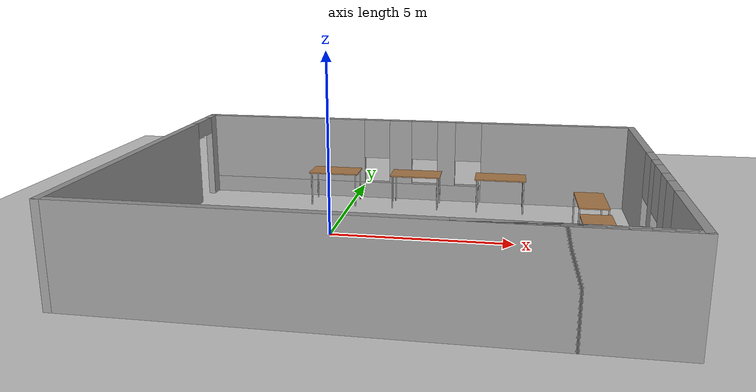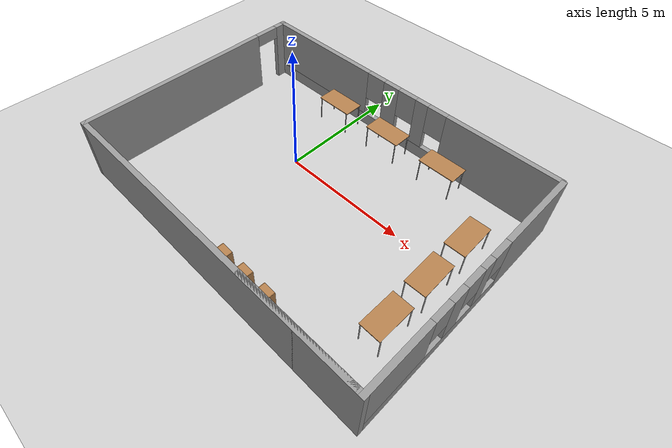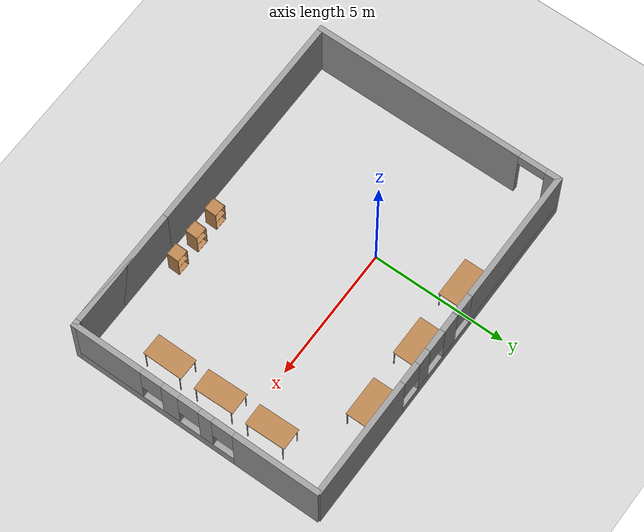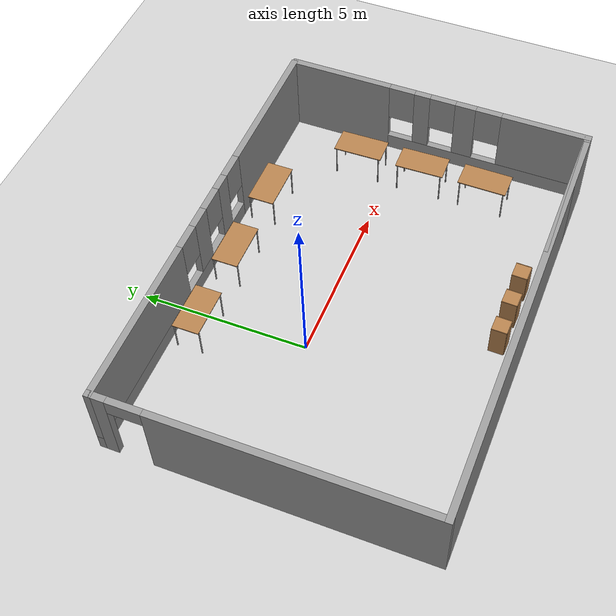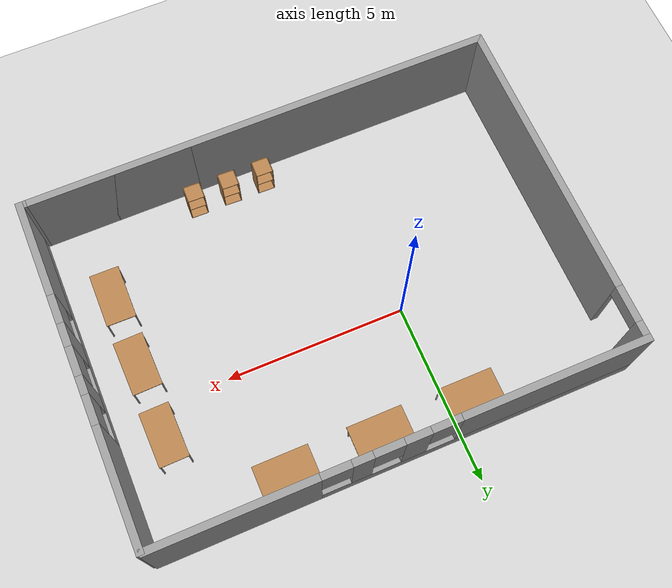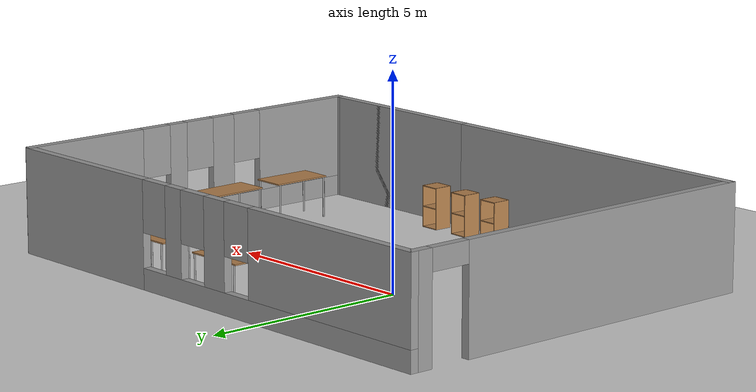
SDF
<sdf version="1.4">
 <world name="default">
  <light name="sun" type="directional">
   <pose>0 0 10 0 -0 0</pose>
   <diffuse>0.8 0.8 0.8 1</diffuse>
   <specular>0.2 0.2 0.2 1</specular>
   <attenuation>
    <range>1000</range>
    <constant>0.9</constant>
    <linear>0.01</linear>
    <quadratic>0.001</quadratic>
   </attenuation>
   <direction>-0.5 0.1 -0.9</direction>
  </light>
  <model name="ground_plane">
   <static>1</static>
   <link name="link">
    <collision name="collision">
     <geometry><plane><normal>0 0 1</normal><size>100 100</size></plane></geometry>
     <surface><friction><ode><mu>100</mu><mu2>50</mu2></ode></friction></surface>
    </collision>
    <visual name="visual">
     <cast_shadows>0</cast_shadows>
     <geometry><plane><normal>0 0 1</normal><size>100 100</size></plane></geometry>
     <material>
      <script><uri>file://media/materials/scripts/gazebo.material</uri><name>Gazebo/Grey</name></script>
     </material>
    </visual>
    <velocity_decay><linear>0</linear><angular>0</angular></velocity_decay>
   </link>
  </model>
  <physics type="ode">
   <max_step_size>0.001</max_step_size>
   <real_time_factor>1</real_time_factor>
   <real_time_update_rate>1000</real_time_update_rate>
   <gravity>0 0 -9.8</gravity>
  </physics>
  <scene><ambient>0.4 0.4 0.4 1</ambient><background>0.7 0.7 0.7 1</background><shadows>1</shadows></scene>
  <spherical_coordinates>
   <surface_model>EARTH_WGS84</surface_model>
   <latitude_deg>0</latitude_deg>
   <longitude_deg>0</longitude_deg>
   <elevation>0</elevation>
   <heading_deg>0</heading_deg>
  </spherical_coordinates>
  <model name="lab3">
   <link name="Wall_10">
    <pose>7.31225 -0.95869 0 0 0 -1.5708</pose>
    <visual name="Wall_10_Visual_0">
     <pose>-3.13448 0 1.25 0 -0 0</pose>
     <geometry><box><size>3.23582 0.2 2.5</size></box></geometry>
     <material>
      <script><uri>file://media/materials/scripts/gazebo.material</uri><name>Gazebo/Grey</name></script>
     </material>
    </visual>
    <collision name="Wall_10_Collision_0">
     <geometry><box><size>3.23582 0.2 2.5</size></box></geometry>
     <pose>-3.13448 0 1.25 0 -0 0</pose>
    </collision>
    <visual name="Wall_10_Visual_1">
     <pose>1.61791 0 0.25 0 -0 0</pose>
     <geometry><box><size>6.26896 0.2 0.5</size></box></geometry>
     <material>
      <script><uri>file://media/materials/scripts/gazebo.material</uri><name>Gazebo/Grey</name></script>
     </material>
    </visual>
    <collision name="Wall_10_Collision_1">
     <geometry><box><size>6.26896 0.2 0.5</size></box></geometry>
     <pose>1.61791 0 0.25 0 -0 0</pose>
    </collision>
    <visual name="Wall_10_Visual_2">
     <pose>-0.465239 0 1.5 0 -0 0</pose>
     <geometry><box><size>0.50267 0.2 2</size></box></geometry>
     <material>
      <script><uri>file://media/materials/scripts/gazebo.material</uri><name>Gazebo/Grey</name></script>
     </material>
    </visual>
    <collision name="Wall_10_Collision_2">
     <geometry><box><size>0.50267 0.2 2</size></box></geometry>
     <pose>-0.465239 0 1.5 0 -0 0</pose>
    </collision>
    <visual name="Wall_10_Visual_3">
     <pose>0.907216 0 1.5 0 -0 0</pose>
     <geometry><box><size>0.642241 0.2 2</size></box></geometry>
     <material>
      <script><uri>file://media/materials/scripts/gazebo.material</uri><name>Gazebo/Grey</name></script>
     </material>
    </visual>
    <collision name="Wall_10_Collision_3">
     <geometry><box><size>0.642241 0.2 2</size></box></geometry>
     <pose>0.907216 0 1.5 0 -0 0</pose>
    </collision>
    <visual name="Wall_10_Visual_4">
     <pose>3.39036 0 1.5 0 -0 0</pose>
     <geometry><box><size>2.72405 0.2 2</size></box></geometry>
     <material>
      <script><uri>file://media/materials/scripts/gazebo.material</uri><name>Gazebo/Grey</name></script>
     </material>
    </visual>
    <collision name="Wall_10_Collision_4">
     <geometry><box><size>2.72405 0.2 2</size></box></geometry>
     <pose>3.39036 0 1.5 0 -0 0</pose>
    </collision>
    <visual name="Wall_10_Visual_5">
     <pose>-1.11657 0 1.9 0 -0 0</pose>
     <geometry><box><size>0.8 0.2 1.2</size></box></geometry>
     <material>
      <script><uri>file://media/materials/scripts/gazebo.material</uri><name>Gazebo/Grey</name></script>
     </material>
    </visual>
    <collision name="Wall_10_Collision_5">
     <geometry><box><size>0.8 0.2 1.2</size></box></geometry>
     <pose>-1.11657 0 1.9 0 -0 0</pose>
    </collision>
    <visual name="Wall_10_Visual_6">
     <pose>0.186096 0 1.9 0 -0 0</pose>
     <geometry><box><size>0.8 0.2 1.2</size></box></geometry>
     <material>
      <script><uri>file://media/materials/scripts/gazebo.material</uri><name>Gazebo/Grey</name></script>
     </material>
    </visual>
    <collision name="Wall_10_Collision_6">
     <geometry><box><size>0.8 0.2 1.2</size></box></geometry>
     <pose>0.186096 0 1.9 0 -0 0</pose>
    </collision>
    <visual name="Wall_10_Visual_7">
     <pose>1.62834 0 1.9 0 -0 0</pose>
     <geometry><box><size>0.8 0.2 1.2</size></box></geometry>
     <material>
      <script><uri>file://media/materials/scripts/gazebo.material</uri><name>Gazebo/Grey</name></script>
     </material>
    </visual>
    <collision name="Wall_10_Collision_7">
     <geometry><box><size>0.8 0.2 1.2</size></box></geometry>
     <pose>1.62834 0 1.9 0 -0 0</pose>
    </collision>
    <velocity_decay><linear>0</linear><angular>0</angular></velocity_decay>
   </link>
   <link name="Wall_11">
    <collision name="Wall_11_Collision">
     <geometry><box><size>4.71282 0.2 2.5</size></box></geometry>
     <pose>0 0 1.25 0 -0 0</pose>
    </collision>
    <visual name="Wall_11_Visual">
     <pose>0 0 1.25 0 -0 0</pose>
     <geometry><box><size>4.71282 0.2 2.5</size></box></geometry>
     <material>
      <script><uri>file://media/materials/scripts/gazebo.material</uri><name>Gazebo/Grey</name></script>
     </material>
    </visual>
    <velocity_decay><linear>0</linear><angular>0</angular></velocity_decay>
    <pose>5.05584 -5.61108 0 0 -0 3.14159</pose>
   </link>
   <link name="Wall_6">
    <pose>0.769252 3.73757 0 0 -0 3.14159</pose>
    <visual name="Wall_6_Visual_0">
     <pose>-4.3638 0 1.25 0 -0 0</pose>
     <geometry><box><size>4.42554 0.2 2.5</size></box></geometry>
     <material>
      <script><uri>file://media/materials/scripts/gazebo.material</uri><name>Gazebo/Grey</name></script>
     </material>
    </visual>
    <collision name="Wall_6_Collision_0">
     <geometry><box><size>4.42554 0.2 2.5</size></box></geometry>
     <pose>-4.3638 0 1.25 0 -0 0</pose>
    </collision>
    <visual name="Wall_6_Visual_1">
     <pose>2.21277 0 0.25 0 -0 0</pose>
     <geometry><box><size>8.7276 0.2 0.5</size></box></geometry>
     <material>
      <script><uri>file://media/materials/scripts/gazebo.material</uri><name>Gazebo/Grey</name></script>
     </material>
    </visual>
    <collision name="Wall_6_Collision_1">
     <geometry><box><size>8.7276 0.2 0.5</size></box></geometry>
     <pose>2.21277 0 0.25 0 -0 0</pose>
    </collision>
    <visual name="Wall_6_Visual_2">
     <pose>-1.07643 0 1.5 0 -0 0</pose>
     <geometry><box><size>0.549193 0.2 2</size></box></geometry>
     <material>
      <script><uri>file://media/materials/scripts/gazebo.material</uri><name>Gazebo/Grey</name></script>
     </material>
    </visual>
    <collision name="Wall_6_Collision_2">
     <geometry><box><size>0.549193 0.2 2</size></box></geometry>
     <pose>-1.07643 0 1.5 0 -0 0</pose>
    </collision>
    <visual name="Wall_6_Visual_3">
     <pose>0.342546 0 1.5 0 -0 0</pose>
     <geometry><box><size>0.688765 0.2 2</size></box></geometry>
     <material>
      <script><uri>file://media/materials/scripts/gazebo.material</uri><name>Gazebo/Grey</name></script>
     </material>
    </visual>
    <collision name="Wall_6_Collision_3">
     <geometry><box><size>0.688765 0.2 2</size></box></geometry>
     <pose>0.342546 0 1.5 0 -0 0</pose>
    </collision>
    <visual name="Wall_6_Visual_4">
     <pose>4.03175 0 1.5 0 -0 0</pose>
     <geometry><box><size>5.08964 0.2 2</size></box></geometry>
     <material>
      <script><uri>file://media/materials/scripts/gazebo.material</uri><name>Gazebo/Grey</name></script>
     </material>
    </visual>
    <collision name="Wall_6_Collision_4">
     <geometry><box><size>5.08964 0.2 2</size></box></geometry>
     <pose>4.03175 0 1.5 0 -0 0</pose>
    </collision>
    <visual name="Wall_6_Visual_5">
     <pose>-1.75103 0 1.9 0 -0 0</pose>
     <geometry><box><size>0.8 0.2 1.2</size></box></geometry>
     <material>
      <script><uri>file://media/materials/scripts/gazebo.material</uri><name>Gazebo/Grey</name></script>
     </material>
    </visual>
    <collision name="Wall_6_Collision_5">
     <geometry><box><size>0.8 0.2 1.2</size></box></geometry>
     <pose>-1.75103 0 1.9 0 -0 0</pose>
    </collision>
    <visual name="Wall_6_Visual_6">
     <pose>-0.401837 0 1.9 0 -0 0</pose>
     <geometry><box><size>0.8 0.2 1.2</size></box></geometry>
     <material>
      <script><uri>file://media/materials/scripts/gazebo.material</uri><name>Gazebo/Grey</name></script>
     </material>
    </visual>
    <collision name="Wall_6_Collision_6">
     <geometry><box><size>0.8 0.2 1.2</size></box></geometry>
     <pose>-0.401837 0 1.9 0 -0 0</pose>
    </collision>
    <visual name="Wall_6_Visual_7">
     <pose>1.08693 0 1.9 0 -0 0</pose>
     <geometry><box><size>0.8 0.2 1.2</size></box></geometry>
     <material>
      <script><uri>file://media/materials/scripts/gazebo.material</uri><name>Gazebo/Grey</name></script>
     </material>
    </visual>
    <collision name="Wall_6_Collision_7">
     <geometry><box><size>0.8 0.2 1.2</size></box></geometry>
     <pose>1.08693 0 1.9 0 -0 0</pose>
    </collision>
    <velocity_decay><linear>0</linear><angular>0</angular></velocity_decay>
   </link>
   <link name="Wall_7">
    <pose>-5.70732 -0.936756 0 0 0 -1.5708</pose>
    <visual name="Wall_7_Visual_0">
     <pose>-4.48715 0 1.25 0 -0 0</pose>
     <geometry><box><size>0.574347 0.2 2.5</size></box></geometry>
     <material>
      <script><uri>file://media/materials/scripts/gazebo.material</uri><name>Gazebo/Grey</name></script>
     </material>
    </visual>
    <collision name="Wall_7_Collision_0">
     <geometry><box><size>0.574347 0.2 2.5</size></box></geometry>
     <pose>-4.48715 0 1.25 0 -0 0</pose>
    </collision>
    <visual name="Wall_7_Visual_1">
     <pose>0.787173 0 1.25 0 -0 0</pose>
     <geometry><box><size>7.97431 0.2 2.5</size></box></geometry>
     <material>
      <script><uri>file://media/materials/scripts/gazebo.material</uri><name>Gazebo/Grey</name></script>
     </material>
    </visual>
    <collision name="Wall_7_Collision_1">
     <geometry><box><size>7.97431 0.2 2.5</size></box></geometry>
     <pose>0.787173 0 1.25 0 -0 0</pose>
    </collision>
    <visual name="Wall_7_Visual_2">
     <pose>-3.69998 0 2.25 0 -0 0</pose>
     <geometry><box><size>1 0.2 0.5</size></box></geometry>
     <material>
      <script><uri>file://media/materials/scripts/gazebo.material</uri><name>Gazebo/Grey</name></script>
     </material>
    </visual>
    <collision name="Wall_7_Collision_2">
     <geometry><box><size>1 0.2 0.5</size></box></geometry>
     <pose>-3.69998 0 2.25 0 -0 0</pose>
    </collision>
    <velocity_decay><linear>0</linear><angular>0</angular></velocity_decay>
   </link>
   <link name="Wall_8">
    <collision name="Wall_8_Collision">
     <geometry><box><size>12.9404 0.2 2.5</size></box></geometry>
     <pose>0 0 1.25 0 -0 0</pose>
    </collision>
    <visual name="Wall_8_Visual">
     <pose>0 0 1.25 0 -0 0</pose>
     <geometry><box><size>12.9404 0.2 2.5</size></box></geometry>
     <material>
      <script><uri>file://media/materials/scripts/gazebo.material</uri><name>Gazebo/Grey</name></script>
     </material>
    </visual>
    <velocity_decay><linear>0</linear><angular>0</angular></velocity_decay>
    <pose>0.662892 -5.61108 0 0 -0 0</pose>
   </link>
   <static>1</static>
   <pose>1 -0 0 0 -0 0</pose>
  </model>
  <model name="table">
   <static>1</static>
   <link name="link">
    <collision name="surface">
     <pose>0 0 1 0 -0 0</pose>
     <geometry><box><size>1.5 0.8 0.03</size></box></geometry>
     <surface><friction><ode><mu>0.6</mu><mu2>0.6</mu2></ode></friction></surface>
    </collision>
    <visual name="visual1">
     <pose>0 0 1 0 -0 0</pose>
     <geometry><box><size>1.5 0.8 0.03</size></box></geometry>
     <material>
      <script><uri>file://media/materials/scripts/gazebo.material</uri><name>Gazebo/Wood</name></script>
     </material>
    </visual>
    <collision name="front_left_leg">
     <pose>0.68 0.38 0.5 0 -0 0</pose>
     <geometry><cylinder><radius>0.02</radius><length>1</length></cylinder></geometry>
    </collision>
    <visual name="front_left_leg">
     <pose>0.68 0.38 0.5 0 -0 0</pose>
     <geometry><cylinder><radius>0.02</radius><length>1</length></cylinder></geometry>
     <material>
      <script><uri>file://media/materials/scripts/gazebo.material</uri><name>Gazebo/Grey</name></script>
     </material>
    </visual>
    <collision name="front_right_leg">
     <pose>0.68 -0.38 0.5 0 -0 0</pose>
     <geometry><cylinder><radius>0.02</radius><length>1</length></cylinder></geometry>
    </collision>
    <visual name="front_right_leg">
     <pose>0.68 -0.38 0.5 0 -0 0</pose>
     <geometry><cylinder><radius>0.02</radius><length>1</length></cylinder></geometry>
     <material>
      <script><uri>file://media/materials/scripts/gazebo.material</uri><name>Gazebo/Grey</name></script>
     </material>
    </visual>
    <collision name="back_right_leg">
     <pose>-0.68 -0.38 0.5 0 -0 0</pose>
     <geometry><cylinder><radius>0.02</radius><length>1</length></cylinder></geometry>
    </collision>
    <visual name="back_right_leg">
     <pose>-0.68 -0.38 0.5 0 -0 0</pose>
     <geometry><cylinder><radius>0.02</radius><length>1</length></cylinder></geometry>
     <material>
      <script><uri>file://media/materials/scripts/gazebo.material</uri><name>Gazebo/Grey</name></script>
     </material>
    </visual>
    <collision name="back_left_leg">
     <pose>-0.68 0.38 0.5 0 -0 0</pose>
     <geometry><cylinder><radius>0.02</radius><length>1</length></cylinder></geometry>
    </collision>
    <visual name="back_left_leg">
     <pose>-0.68 0.38 0.5 0 -0 0</pose>
     <geometry><cylinder><radius>0.02</radius><length>1</length></cylinder></geometry>
     <material>
      <script><uri>file://media/materials/scripts/gazebo.material</uri><name>Gazebo/Grey</name></script>
     </material>
    </visual>
    <velocity_decay><linear>0</linear><angular>0</angular></velocity_decay>
   </link>
   <pose>-0.505173 3 0 0 -0 0</pose>
  </model>
  <model name="table_0">
   <static>1</static>
   <link name="link">
    <collision name="surface">
     <pose>0 0 1 0 -0 0</pose>
     <geometry><box><size>1.5 0.8 0.03</size></box></geometry>
     <surface><friction><ode><mu>0.6</mu><mu2>0.6</mu2></ode></friction></surface>
    </collision>
    <visual name="visual1">
     <pose>0 0 1 0 -0 0</pose>
     <geometry><box><size>1.5 0.8 0.03</size></box></geometry>
     <material>
      <script><uri>file://media/materials/scripts/gazebo.material</uri><name>Gazebo/Wood</name></script>
     </material>
    </visual>
    <collision name="front_left_leg">
     <pose>0.68 0.38 0.5 0 -0 0</pose>
     <geometry><cylinder><radius>0.02</radius><length>1</length></cylinder></geometry>
    </collision>
    <visual name="front_left_leg">
     <pose>0.68 0.38 0.5 0 -0 0</pose>
     <geometry><cylinder><radius>0.02</radius><length>1</length></cylinder></geometry>
     <material>
      <script><uri>file://media/materials/scripts/gazebo.material</uri><name>Gazebo/Grey</name></script>
     </material>
    </visual>
    <collision name="front_right_leg">
     <pose>0.68 -0.38 0.5 0 -0 0</pose>
     <geometry><cylinder><radius>0.02</radius><length>1</length></cylinder></geometry>
    </collision>
    <visual name="front_right_leg">
     <pose>0.68 -0.38 0.5 0 -0 0</pose>
     <geometry><cylinder><radius>0.02</radius><length>1</length></cylinder></geometry>
     <material>
      <script><uri>file://media/materials/scripts/gazebo.material</uri><name>Gazebo/Grey</name></script>
     </material>
    </visual>
    <collision name="back_right_leg">
     <pose>-0.68 -0.38 0.5 0 -0 0</pose>
     <geometry><cylinder><radius>0.02</radius><length>1</length></cylinder></geometry>
    </collision>
    <visual name="back_right_leg">
     <pose>-0.68 -0.38 0.5 0 -0 0</pose>
     <geometry><cylinder><radius>0.02</radius><length>1</length></cylinder></geometry>
     <material>
      <script><uri>file://media/materials/scripts/gazebo.material</uri><name>Gazebo/Grey</name></script>
     </material>
    </visual>
    <collision name="back_left_leg">
     <pose>-0.68 0.38 0.5 0 -0 0</pose>
     <geometry><cylinder><radius>0.02</radius><length>1</length></cylinder></geometry>
    </collision>
    <visual name="back_left_leg">
     <pose>-0.68 0.38 0.5 0 -0 0</pose>
     <geometry><cylinder><radius>0.02</radius><length>1</length></cylinder></geometry>
     <material>
      <script><uri>file://media/materials/scripts/gazebo.material</uri><name>Gazebo/Grey</name></script>
     </material>
    </visual>
    <velocity_decay><linear>0</linear><angular>0</angular></velocity_decay>
   </link>
   <pose>2 3 0 0 -0 0</pose>
  </model>
  <model name="table_1">
   <static>1</static>
   <link name="link">
    <collision name="surface">
     <pose>0 0 1 0 -0 0</pose>
     <geometry><box><size>1.5 0.8 0.03</size></box></geometry>
     <surface><friction><ode><mu>0.6</mu><mu2>0.6</mu2></ode></friction></surface>
    </collision>
    <visual name="visual1">
     <pose>0 0 1 0 -0 0</pose>
     <geometry><box><size>1.5 0.8 0.03</size></box></geometry>
     <material>
      <script><uri>file://media/materials/scripts/gazebo.material</uri><name>Gazebo/Wood</name></script>
     </material>
    </visual>
    <collision name="front_left_leg">
     <pose>0.68 0.38 0.5 0 -0 0</pose>
     <geometry><cylinder><radius>0.02</radius><length>1</length></cylinder></geometry>
    </collision>
    <visual name="front_left_leg">
     <pose>0.68 0.38 0.5 0 -0 0</pose>
     <geometry><cylinder><radius>0.02</radius><length>1</length></cylinder></geometry>
     <material>
      <script><uri>file://media/materials/scripts/gazebo.material</uri><name>Gazebo/Grey</name></script>
     </material>
    </visual>
    <collision name="front_right_leg">
     <pose>0.68 -0.38 0.5 0 -0 0</pose>
     <geometry><cylinder><radius>0.02</radius><length>1</length></cylinder></geometry>
    </collision>
    <visual name="front_right_leg">
     <pose>0.68 -0.38 0.5 0 -0 0</pose>
     <geometry><cylinder><radius>0.02</radius><length>1</length></cylinder></geometry>
     <material>
      <script><uri>file://media/materials/scripts/gazebo.material</uri><name>Gazebo/Grey</name></script>
     </material>
    </visual>
    <collision name="back_right_leg">
     <pose>-0.68 -0.38 0.5 0 -0 0</pose>
     <geometry><cylinder><radius>0.02</radius><length>1</length></cylinder></geometry>
    </collision>
    <visual name="back_right_leg">
     <pose>-0.68 -0.38 0.5 0 -0 0</pose>
     <geometry><cylinder><radius>0.02</radius><length>1</length></cylinder></geometry>
     <material>
      <script><uri>file://media/materials/scripts/gazebo.material</uri><name>Gazebo/Grey</name></script>
     </material>
    </visual>
    <collision name="back_left_leg">
     <pose>-0.68 0.38 0.5 0 -0 0</pose>
     <geometry><cylinder><radius>0.02</radius><length>1</length></cylinder></geometry>
    </collision>
    <visual name="back_left_leg">
     <pose>-0.68 0.38 0.5 0 -0 0</pose>
     <geometry><cylinder><radius>0.02</radius><length>1</length></cylinder></geometry>
     <material>
      <script><uri>file://media/materials/scripts/gazebo.material</uri><name>Gazebo/Grey</name></script>
     </material>
    </visual>
    <velocity_decay><linear>0</linear><angular>0</angular></velocity_decay>
   </link>
   <pose>4.5442 3 0 0 -0 0</pose>
  </model>
  <model name="table_2">
   <static>1</static>
   <link name="link">
    <collision name="surface">
     <pose>0 0 1 0 -0 0</pose>
     <geometry><box><size>1.5 0.8 0.03</size></box></geometry>
     <surface><friction><ode><mu>0.6</mu><mu2>0.6</mu2></ode></friction></surface>
    </collision>
    <visual name="visual1">
     <pose>0 0 1 0 -0 0</pose>
     <geometry><box><size>1.5 0.8 0.03</size></box></geometry>
     <material>
      <script><uri>file://media/materials/scripts/gazebo.material</uri><name>Gazebo/Wood</name></script>
     </material>
    </visual>
    <collision name="front_left_leg">
     <pose>0.68 0.38 0.5 0 -0 0</pose>
     <geometry><cylinder><radius>0.02</radius><length>1</length></cylinder></geometry>
    </collision>
    <visual name="front_left_leg">
     <pose>0.68 0.38 0.5 0 -0 0</pose>
     <geometry><cylinder><radius>0.02</radius><length>1</length></cylinder></geometry>
     <material>
      <script><uri>file://media/materials/scripts/gazebo.material</uri><name>Gazebo/Grey</name></script>
     </material>
    </visual>
    <collision name="front_right_leg">
     <pose>0.68 -0.38 0.5 0 -0 0</pose>
     <geometry><cylinder><radius>0.02</radius><length>1</length></cylinder></geometry>
    </collision>
    <visual name="front_right_leg">
     <pose>0.68 -0.38 0.5 0 -0 0</pose>
     <geometry><cylinder><radius>0.02</radius><length>1</length></cylinder></geometry>
     <material>
      <script><uri>file://media/materials/scripts/gazebo.material</uri><name>Gazebo/Grey</name></script>
     </material>
    </visual>
    <collision name="back_right_leg">
     <pose>-0.68 -0.38 0.5 0 -0 0</pose>
     <geometry><cylinder><radius>0.02</radius><length>1</length></cylinder></geometry>
    </collision>
    <visual name="back_right_leg">
     <pose>-0.68 -0.38 0.5 0 -0 0</pose>
     <geometry><cylinder><radius>0.02</radius><length>1</length></cylinder></geometry>
     <material>
      <script><uri>file://media/materials/scripts/gazebo.material</uri><name>Gazebo/Grey</name></script>
     </material>
    </visual>
    <collision name="back_left_leg">
     <pose>-0.68 0.38 0.5 0 -0 0</pose>
     <geometry><cylinder><radius>0.02</radius><length>1</length></cylinder></geometry>
    </collision>
    <visual name="back_left_leg">
     <pose>-0.68 0.38 0.5 0 -0 0</pose>
     <geometry><cylinder><radius>0.02</radius><length>1</length></cylinder></geometry>
     <material>
      <script><uri>file://media/materials/scripts/gazebo.material</uri><name>Gazebo/Grey</name></script>
     </material>
    </visual>
    <velocity_decay><linear>0</linear><angular>0</angular></velocity_decay>
   </link>
   <pose>7 1 0 0 0 -1.55311</pose>
  </model>
  <model name="table_3">
   <static>1</static>
   <link name="link">
    <collision name="surface">
     <pose>0 0 1 0 -0 0</pose>
     <geometry><box><size>1.5 0.8 0.03</size></box></geometry>
     <surface><friction><ode><mu>0.6</mu><mu2>0.6</mu2></ode></friction></surface>
    </collision>
    <visual name="visual1">
     <pose>0 0 1 0 -0 0</pose>
     <geometry><box><size>1.5 0.8 0.03</size></box></geometry>
     <material>
      <script><uri>file://media/materials/scripts/gazebo.material</uri><name>Gazebo/Wood</name></script>
     </material>
    </visual>
    <collision name="front_left_leg">
     <pose>0.68 0.38 0.5 0 -0 0</pose>
     <geometry><cylinder><radius>0.02</radius><length>1</length></cylinder></geometry>
    </collision>
    <visual name="front_left_leg">
     <pose>0.68 0.38 0.5 0 -0 0</pose>
     <geometry><cylinder><radius>0.02</radius><length>1</length></cylinder></geometry>
     <material>
      <script><uri>file://media/materials/scripts/gazebo.material</uri><name>Gazebo/Grey</name></script>
     </material>
    </visual>
    <collision name="front_right_leg">
     <pose>0.68 -0.38 0.5 0 -0 0</pose>
     <geometry><cylinder><radius>0.02</radius><length>1</length></cylinder></geometry>
    </collision>
    <visual name="front_right_leg">
     <pose>0.68 -0.38 0.5 0 -0 0</pose>
     <geometry><cylinder><radius>0.02</radius><length>1</length></cylinder></geometry>
     <material>
      <script><uri>file://media/materials/scripts/gazebo.material</uri><name>Gazebo/Grey</name></script>
     </material>
    </visual>
    <collision name="back_right_leg">
     <pose>-0.68 -0.38 0.5 0 -0 0</pose>
     <geometry><cylinder><radius>0.02</radius><length>1</length></cylinder></geometry>
    </collision>
    <visual name="back_right_leg">
     <pose>-0.68 -0.38 0.5 0 -0 0</pose>
     <geometry><cylinder><radius>0.02</radius><length>1</length></cylinder></geometry>
     <material>
      <script><uri>file://media/materials/scripts/gazebo.material</uri><name>Gazebo/Grey</name></script>
     </material>
    </visual>
    <collision name="back_left_leg">
     <pose>-0.68 0.38 0.5 0 -0 0</pose>
     <geometry><cylinder><radius>0.02</radius><length>1</length></cylinder></geometry>
    </collision>
    <visual name="back_left_leg">
     <pose>-0.68 0.38 0.5 0 -0 0</pose>
     <geometry><cylinder><radius>0.02</radius><length>1</length></cylinder></geometry>
     <material>
      <script><uri>file://media/materials/scripts/gazebo.material</uri><name>Gazebo/Grey</name></script>
     </material>
    </visual>
    <velocity_decay><linear>0</linear><angular>0</angular></velocity_decay>
   </link>
   <pose>7 -1 0 0 -0 1.59208</pose>
  </model>
  <model name="table_4">
   <static>1</static>
   <link name="link">
    <collision name="surface">
     <pose>0 0 1 0 -0 0</pose>
     <geometry><box><size>1.5 0.8 0.03</size></box></geometry>
     <surface><friction><ode><mu>0.6</mu><mu2>0.6</mu2></ode></friction></surface>
    </collision>
    <visual name="visual1">
     <pose>0 0 1 0 -0 0</pose>
     <geometry><box><size>1.5 0.8 0.03</size></box></geometry>
     <material>
      <script><uri>file://media/materials/scripts/gazebo.material</uri><name>Gazebo/Wood</name></script>
     </material>
    </visual>
    <collision name="front_left_leg">
     <pose>0.68 0.38 0.5 0 -0 0</pose>
     <geometry><cylinder><radius>0.02</radius><length>1</length></cylinder></geometry>
    </collision>
    <visual name="front_left_leg">
     <pose>0.68 0.38 0.5 0 -0 0</pose>
     <geometry><cylinder><radius>0.02</radius><length>1</length></cylinder></geometry>
     <material>
      <script><uri>file://media/materials/scripts/gazebo.material</uri><name>Gazebo/Grey</name></script>
     </material>
    </visual>
    <collision name="front_right_leg">
     <pose>0.68 -0.38 0.5 0 -0 0</pose>
     <geometry><cylinder><radius>0.02</radius><length>1</length></cylinder></geometry>
    </collision>
    <visual name="front_right_leg">
     <pose>0.68 -0.38 0.5 0 -0 0</pose>
     <geometry><cylinder><radius>0.02</radius><length>1</length></cylinder></geometry>
     <material>
      <script><uri>file://media/materials/scripts/gazebo.material</uri><name>Gazebo/Grey</name></script>
     </material>
    </visual>
    <collision name="back_right_leg">
     <pose>-0.68 -0.38 0.5 0 -0 0</pose>
     <geometry><cylinder><radius>0.02</radius><length>1</length></cylinder></geometry>
    </collision>
    <visual name="back_right_leg">
     <pose>-0.68 -0.38 0.5 0 -0 0</pose>
     <geometry><cylinder><radius>0.02</radius><length>1</length></cylinder></geometry>
     <material>
      <script><uri>file://media/materials/scripts/gazebo.material</uri><name>Gazebo/Grey</name></script>
     </material>
    </visual>
    <collision name="back_left_leg">
     <pose>-0.68 0.38 0.5 0 -0 0</pose>
     <geometry><cylinder><radius>0.02</radius><length>1</length></cylinder></geometry>
    </collision>
    <visual name="back_left_leg">
     <pose>-0.68 0.38 0.5 0 -0 0</pose>
     <geometry><cylinder><radius>0.02</radius><length>1</length></cylinder></geometry>
     <material>
      <script><uri>file://media/materials/scripts/gazebo.material</uri><name>Gazebo/Grey</name></script>
     </material>
    </visual>
    <velocity_decay><linear>0</linear><angular>0</angular></velocity_decay>
   </link>
   <pose>7 -3 0 0 -0 1.56245</pose>
  </model>
  <model name="cabinet">
   <static>1</static>
   <link name="cabinet_bottom_plate">
    <inertial>
     <pose>0 0 -1 0 -0 0</pose>
     <inertia><ixx>2.05</ixx><ixy>0</ixy><ixz>0</ixz><iyy>2.05</iyy><iyz>0</iyz><izz>2.05</izz></inertia>
     <mass>25</mass>
    </inertial>
    <collision name="cabinet_bottom_plate_geom">
     <pose>0 0 0.01 0 -0 0</pose>
     <geometry><box><size>0.45 0.45 0.02</size></box></geometry>
    </collision>
    <visual name="cabinet_bottom_plate_geom_visual">
     <pose>0 0 0.01 0 -0 0</pose>
     <geometry><box><size>0.45 0.45 0.02</size></box></geometry>
     <material>
      <script><uri>file://media/materials/scripts/gazebo.material</uri><name>Gazebo/Wood</name></script>
     </material>
    </visual>
    <collision name="cabinet_bottom_plate_geom_cabinet_back_plate">
     <pose>0.235 0 0.51 0 -0 0</pose>
     <geometry><box><size>0.02 0.45 1.02</size></box></geometry>
    </collision>
    <visual name="cabinet_bottom_plate_geom_cabinet_back_plate_visual">
     <pose>0.235 0 0.51 0 -0 0</pose>
     <geometry><box><size>0.02 0.45 1.02</size></box></geometry>
     <material>
      <script><uri>file://media/materials/scripts/gazebo.material</uri><name>Gazebo/Wood</name></script>
     </material>
    </visual>
    <collision name="cabinet_bottom_plate_geom_cabinet_left_plate">
     <pose>0 0.235 0.51 0 -0 0</pose>
     <geometry><box><size>0.45 0.02 1.02</size></box></geometry>
    </collision>
    <visual name="cabinet_bottom_plate_geom_cabinet_left_plate_visual">
     <pose>0 0.235 0.51 0 -0 0</pose>
     <geometry><box><size>0.45 0.02 1.02</size></box></geometry>
     <material>
      <script><uri>file://media/materials/scripts/gazebo.material</uri><name>Gazebo/Wood</name></script>
     </material>
    </visual>
    <collision name="cabinet_bottom_plate_geom_cabinet_middle_plate">
     <pose>0 0 0.51 0 -0 0</pose>
     <geometry><box><size>0.45 0.45 0.02</size></box></geometry>
    </collision>
    <visual name="cabinet_bottom_plate_geom_cabinet_middle_plate_visual">
     <pose>0 0 0.51 0 -0 0</pose>
     <geometry><box><size>0.45 0.45 0.02</size></box></geometry>
     <material>
      <script><uri>file://media/materials/scripts/gazebo.material</uri><name>Gazebo/Wood</name></script>
     </material>
    </visual>
    <collision name="cabinet_bottom_plate_geom_cabinet_right_plate">
     <pose>0 -0.235 0.51 0 -0 0</pose>
     <geometry><box><size>0.45 0.02 1.02</size></box></geometry>
    </collision>
    <visual name="cabinet_bottom_plate_geom_cabinet_right_plate_visual">
     <pose>0 -0.235 0.51 0 -0 0</pose>
     <geometry><box><size>0.45 0.02 1.02</size></box></geometry>
     <material>
      <script><uri>file://media/materials/scripts/gazebo.material</uri><name>Gazebo/Wood</name></script>
     </material>
    </visual>
    <collision name="cabinet_bottom_plate_geom_cabinet_top_plate">
     <pose>0 0 1.01 0 -0 0</pose>
     <geometry><box><size>0.45 0.45 0.02</size></box></geometry>
    </collision>
    <visual name="cabinet_bottom_plate_geom_cabinet_top_plate_visual">
     <pose>0 0 1.01 0 -0 0</pose>
     <geometry><box><size>0.45 0.45 0.02</size></box></geometry>
     <material>
      <script><uri>file://media/materials/scripts/gazebo.material</uri><name>Gazebo/Wood</name></script>
     </material>
    </visual>
    <velocity_decay><linear>0</linear><angular>0</angular></velocity_decay>
   </link>
   <pose>4 -5 0 0 0 -1.59569</pose>
  </model>
  <model name="cabinet_0">
   <static>1</static>
   <link name="cabinet_bottom_plate">
    <inertial>
     <pose>0 0 -1 0 -0 0</pose>
     <inertia><ixx>2.05</ixx><ixy>0</ixy><ixz>0</ixz><iyy>2.05</iyy><iyz>0</iyz><izz>2.05</izz></inertia>
     <mass>25</mass>
    </inertial>
    <collision name="cabinet_bottom_plate_geom">
     <pose>0 0 0.01 0 -0 0</pose>
     <geometry><box><size>0.45 0.45 0.02</size></box></geometry>
    </collision>
    <visual name="cabinet_bottom_plate_geom_visual">
     <pose>0 0 0.01 0 -0 0</pose>
     <geometry><box><size>0.45 0.45 0.02</size></box></geometry>
     <material>
      <script><uri>file://media/materials/scripts/gazebo.material</uri><name>Gazebo/Wood</name></script>
     </material>
    </visual>
    <collision name="cabinet_bottom_plate_geom_cabinet_back_plate">
     <pose>0.235 0 0.51 0 -0 0</pose>
     <geometry><box><size>0.02 0.45 1.02</size></box></geometry>
    </collision>
    <visual name="cabinet_bottom_plate_geom_cabinet_back_plate_visual">
     <pose>0.235 0 0.51 0 -0 0</pose>
     <geometry><box><size>0.02 0.45 1.02</size></box></geometry>
     <material>
      <script><uri>file://media/materials/scripts/gazebo.material</uri><name>Gazebo/Wood</name></script>
     </material>
    </visual>
    <collision name="cabinet_bottom_plate_geom_cabinet_left_plate">
     <pose>0 0.235 0.51 0 -0 0</pose>
     <geometry><box><size>0.45 0.02 1.02</size></box></geometry>
    </collision>
    <visual name="cabinet_bottom_plate_geom_cabinet_left_plate_visual">
     <pose>0 0.235 0.51 0 -0 0</pose>
     <geometry><box><size>0.45 0.02 1.02</size></box></geometry>
     <material>
      <script><uri>file://media/materials/scripts/gazebo.material</uri><name>Gazebo/Wood</name></script>
     </material>
    </visual>
    <collision name="cabinet_bottom_plate_geom_cabinet_middle_plate">
     <pose>0 0 0.51 0 -0 0</pose>
     <geometry><box><size>0.45 0.45 0.02</size></box></geometry>
    </collision>
    <visual name="cabinet_bottom_plate_geom_cabinet_middle_plate_visual">
     <pose>0 0 0.51 0 -0 0</pose>
     <geometry><box><size>0.45 0.45 0.02</size></box></geometry>
     <material>
      <script><uri>file://media/materials/scripts/gazebo.material</uri><name>Gazebo/Wood</name></script>
     </material>
    </visual>
    <collision name="cabinet_bottom_plate_geom_cabinet_right_plate">
     <pose>0 -0.235 0.51 0 -0 0</pose>
     <geometry><box><size>0.45 0.02 1.02</size></box></geometry>
    </collision>
    <visual name="cabinet_bottom_plate_geom_cabinet_right_plate_visual">
     <pose>0 -0.235 0.51 0 -0 0</pose>
     <geometry><box><size>0.45 0.02 1.02</size></box></geometry>
     <material>
      <script><uri>file://media/materials/scripts/gazebo.material</uri><name>Gazebo/Wood</name></script>
     </material>
    </visual>
    <collision name="cabinet_bottom_plate_geom_cabinet_top_plate">
     <pose>0 0 1.01 0 -0 0</pose>
     <geometry><box><size>0.45 0.45 0.02</size></box></geometry>
    </collision>
    <visual name="cabinet_bottom_plate_geom_cabinet_top_plate_visual">
     <pose>0 0 1.01 0 -0 0</pose>
     <geometry><box><size>0.45 0.45 0.02</size></box></geometry>
     <material>
      <script><uri>file://media/materials/scripts/gazebo.material</uri><name>Gazebo/Wood</name></script>
     </material>
    </visual>
    <velocity_decay><linear>0</linear><angular>0</angular></velocity_decay>
   </link>
   <pose>3 -5 0 0 0 -1.60286</pose>
  </model>
  <model name="cabinet_1">
   <static>1</static>
   <link name="cabinet_bottom_plate">
    <inertial>
     <pose>0 0 -1 0 -0 0</pose>
     <inertia><ixx>2.05</ixx><ixy>0</ixy><ixz>0</ixz><iyy>2.05</iyy><iyz>0</iyz><izz>2.05</izz></inertia>
     <mass>25</mass>
    </inertial>
    <collision name="cabinet_bottom_plate_geom">
     <pose>0 0 0.01 0 -0 0</pose>
     <geometry><box><size>0.45 0.45 0.02</size></box></geometry>
    </collision>
    <visual name="cabinet_bottom_plate_geom_visual">
     <pose>0 0 0.01 0 -0 0</pose>
     <geometry><box><size>0.45 0.45 0.02</size></box></geometry>
     <material>
      <script><uri>file://media/materials/scripts/gazebo.material</uri><name>Gazebo/Wood</name></script>
     </material>
    </visual>
    <collision name="cabinet_bottom_plate_geom_cabinet_back_plate">
     <pose>0.235 0 0.51 0 -0 0</pose>
     <geometry><box><size>0.02 0.45 1.02</size></box></geometry>
    </collision>
    <visual name="cabinet_bottom_plate_geom_cabinet_back_plate_visual">
     <pose>0.235 0 0.51 0 -0 0</pose>
     <geometry><box><size>0.02 0.45 1.02</size></box></geometry>
     <material>
      <script><uri>file://media/materials/scripts/gazebo.material</uri><name>Gazebo/Wood</name></script>
     </material>
    </visual>
    <collision name="cabinet_bottom_plate_geom_cabinet_left_plate">
     <pose>0 0.235 0.51 0 -0 0</pose>
     <geometry><box><size>0.45 0.02 1.02</size></box></geometry>
    </collision>
    <visual name="cabinet_bottom_plate_geom_cabinet_left_plate_visual">
     <pose>0 0.235 0.51 0 -0 0</pose>
     <geometry><box><size>0.45 0.02 1.02</size></box></geometry>
     <material>
      <script><uri>file://media/materials/scripts/gazebo.material</uri><name>Gazebo/Wood</name></script>
     </material>
    </visual>
    <collision name="cabinet_bottom_plate_geom_cabinet_middle_plate">
     <pose>0 0 0.51 0 -0 0</pose>
     <geometry><box><size>0.45 0.45 0.02</size></box></geometry>
    </collision>
    <visual name="cabinet_bottom_plate_geom_cabinet_middle_plate_visual">
     <pose>0 0 0.51 0 -0 0</pose>
     <geometry><box><size>0.45 0.45 0.02</size></box></geometry>
     <material>
      <script><uri>file://media/materials/scripts/gazebo.material</uri><name>Gazebo/Wood</name></script>
     </material>
    </visual>
    <collision name="cabinet_bottom_plate_geom_cabinet_right_plate">
     <pose>0 -0.235 0.51 0 -0 0</pose>
     <geometry><box><size>0.45 0.02 1.02</size></box></geometry>
    </collision>
    <visual name="cabinet_bottom_plate_geom_cabinet_right_plate_visual">
     <pose>0 -0.235 0.51 0 -0 0</pose>
     <geometry><box><size>0.45 0.02 1.02</size></box></geometry>
     <material>
      <script><uri>file://media/materials/scripts/gazebo.material</uri><name>Gazebo/Wood</name></script>
     </material>
    </visual>
    <collision name="cabinet_bottom_plate_geom_cabinet_top_plate">
     <pose>0 0 1.01 0 -0 0</pose>
     <geometry><box><size>0.45 0.45 0.02</size></box></geometry>
    </collision>
    <visual name="cabinet_bottom_plate_geom_cabinet_top_plate_visual">
     <pose>0 0 1.01 0 -0 0</pose>
     <geometry><box><size>0.45 0.45 0.02</size></box></geometry>
     <material>
      <script><uri>file://media/materials/scripts/gazebo.material</uri><name>Gazebo/Wood</name></script>
     </material>
    </visual>
    <velocity_decay><linear>0</linear><angular>0</angular></velocity_decay>
   </link>
   <pose>2 -5 0 0 0 -1.59466</pose>
  </model>
 </world>
</sdf>
